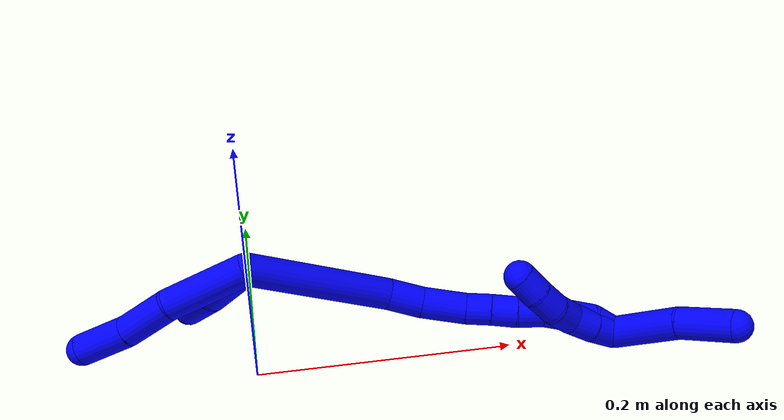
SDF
<sdf version="1.7">
 <world name="default">
  <model name="photoneo_s_sensor">
   <static>1</static>
   <pose>0 0 2 1.57079 1.57079 3.14159</pose>
   <link name="link">
    <inertial><mass>0.1</mass></inertial>
    <sensor name="sensor" type="depth">
     <update_rate>30</update_rate>
     <camera>
      <horizontal_fov>1.22</horizontal_fov>
      <image><width>1920</width><height>1200</height><format>B8G8R8</format></image>
      <clip><near>0.1</near><far>4</far></clip>
      <depth_camera><output>points</output></depth_camera>
     </camera>
     <plugin name="camera_plugin" filename="libgazebo_ros_depth_camera.so">
      <baseline>0.2</baseline>
      <alwaysOn>1</alwaysOn>
      <updateRate>0.0</updateRate>
      <cameraName>camera_ir</cameraName>
      <imageTopicName>/camera/color/image_raw</imageTopicName>
      <cameraInfoTopicName>/camera/color/camera_info</cameraInfoTopicName>
      <depthImageTopicName>/camera/depth/image_raw</depthImageTopicName>
      <depthImageCameraInfoTopicName>/camera/depth/camera_info</depthImageCameraInfoTopicName>
      <pointCloudTopicName>/camera/depth/points</pointCloudTopicName>
      <frameName>fr_optical</frameName>
      <pointCloudCutoff>0.1</pointCloudCutoff>
      <pointCloudCutoffMax>2.0</pointCloudCutoffMax>
      <distortionK1>0</distortionK1>
      <distortionK2>0</distortionK2>
      <distortionK3>0</distortionK3>
      <distortionT1>0</distortionT1>
      <distortionT2>0</distortionT2>
      <CxPrime>0</CxPrime>
      <Cx>0</Cx>
      <Cy>0</Cy>
      <focalLength>0</focalLength>
      <hackBaseline>0</hackBaseline>
     </plugin>
    </sensor>
   </link>
  </model>
  <model name="bin">
   <static>1</static>
   <link name="bottom">
    <collision name="collision-bottom">
     <pose>0 0 -0.01 0 -0 0</pose>
     <geometry><box><size>0.8 0.6 0.02</size></box></geometry>
     <surface>
      <friction><ode><mu>100</mu><mu2>100</mu2></ode></friction>
      <contact><collide_bitmask>65535</collide_bitmask></contact>
     </surface>
    </collision>
   </link>
   <link name="west_wall">
    <collision name="collision-west_wall">
     <pose>-0.41 0 0.1 0 -0 0</pose>
     <geometry><box><size>0.02 0.6 0.2</size></box></geometry>
     <surface>
      <friction><ode><mu>100</mu><mu2>100</mu2></ode></friction>
      <contact><collide_bitmask>65535</collide_bitmask></contact>
     </surface>
    </collision>
   </link>
   <link name="east_wall">
    <collision name="collision-east_wall">
     <pose>0.41 0 0.1 0 -0 0</pose>
     <geometry><box><size>0.02 0.6 0.2</size></box></geometry>
     <surface>
      <friction><ode><mu>100</mu><mu2>100</mu2></ode></friction>
      <contact><collide_bitmask>65535</collide_bitmask></contact>
     </surface>
    </collision>
   </link>
   <link name="south_wall">
    <collision name="collision-south_wall">
     <pose>0 -0.31 0.1 0 -0 0</pose>
     <geometry><box><size>0.8 0.02 0.2</size></box></geometry>
     <surface>
      <friction><ode><mu>100</mu><mu2>100</mu2></ode></friction>
      <contact><collide_bitmask>65535</collide_bitmask></contact>
     </surface>
    </collision>
   </link>
   <link name="north_wall">
    <collision name="collision-north_wall">
     <pose>0 0.31 0.1 0 -0 0</pose>
     <geometry><box><size>0.8 0.02 0.2</size></box></geometry>
     <surface>
      <friction><ode><mu>100</mu><mu2>100</mu2></ode></friction>
      <contact><collide_bitmask>65535</collide_bitmask></contact>
     </surface>
    </collision>
   </link>
  </model>
  <model name="1">
   <static>0</static>
   <link name="1">
    <collision name="collision-cylinder-e_1_2_8">
     <pose>8.9e-05 3.9e-05 -0.033346 -3.14043 0.002684 -2.3262</pose>
     <geometry><cylinder><radius>0.0125</radius><length>0.066691</length></cylinder></geometry>
     <surface>
      <friction><ode><mu>1.16</mu><mu2>1.16</mu2><slip1>0</slip1><slip2>0</slip2></ode></friction>
      <contact><ode><kp>1e+06</kp><kd>1</kd><max_vel>0</max_vel><min_depth>0.001</min_depth></ode></contact>
     </surface>
    </collision>
    <visual name="visual-cylinder-e_1_2_8">
     <pose>8.9e-05 3.9e-05 -0.033346 -3.14043 0.002684 -2.3262</pose>
     <geometry><cylinder><radius>0.0125</radius><length>0.066691</length></cylinder></geometry>
     <material><ambient>0 0 1 1</ambient></material>
    </visual>
    <collision name="collision-cylinder-e_2_8_9">
     <pose>0.004004 0.001491 -0.086918 -3.07183 0.186483 -2.42725</pose>
     <geometry><cylinder><radius>0.0125</radius><length>0.041267</length></cylinder></geometry>
     <surface>
      <friction><ode><mu>1.16</mu><mu2>1.16</mu2><slip1>0</slip1><slip2>0</slip2></ode></friction>
      <contact><ode><kp>1e+06</kp><kd>1</kd><max_vel>0</max_vel><min_depth>0.001</min_depth></ode></contact>
     </surface>
    </collision>
    <visual name="visual-cylinder-e_2_8_9">
     <pose>0.004004 0.001491 -0.086918 -3.07183 0.186483 -2.42725</pose>
     <geometry><cylinder><radius>0.0125</radius><length>0.041267</length></cylinder></geometry>
     <material><ambient>0 0 1 1</ambient></material>
    </visual>
    <collision name="collision-cylinder-e_3_9_6">
     <pose>0.008596 0.005426 -0.127999 -3.02124 0.036429 -0.587234</pose>
     <geometry><cylinder><radius>0.0125</radius><length>0.042042</length></cylinder></geometry>
     <surface>
      <friction><ode><mu>1.16</mu><mu2>1.16</mu2><slip1>0</slip1><slip2>0</slip2></ode></friction>
      <contact><ode><kp>1e+06</kp><kd>1</kd><max_vel>0</max_vel><min_depth>0.001</min_depth></ode></contact>
     </surface>
    </collision>
    <visual name="visual-cylinder-e_3_9_6">
     <pose>0.008596 0.005426 -0.127999 -3.02124 0.036429 -0.587234</pose>
     <geometry><cylinder><radius>0.0125</radius><length>0.042042</length></cylinder></geometry>
     <material><ambient>0 0 1 1</ambient></material>
    </visual>
    <collision name="collision-cylinder-e_1_2_10">
     <pose>0.010007 0.009228 -0.020409 -2.71695 0.420166 -1.55989</pose>
     <geometry><cylinder><radius>0.0125</radius><length>0.049063</length></cylinder></geometry>
     <surface>
      <friction><ode><mu>1.16</mu><mu2>1.16</mu2><slip1>0</slip1><slip2>0</slip2></ode></friction>
      <contact><ode><kp>1e+06</kp><kd>1</kd><max_vel>0</max_vel><min_depth>0.001</min_depth></ode></contact>
     </surface>
    </collision>
    <visual name="visual-cylinder-e_1_2_10">
     <pose>0.010007 0.009228 -0.020409 -2.71695 0.420166 -1.55989</pose>
     <geometry><cylinder><radius>0.0125</radius><length>0.049063</length></cylinder></geometry>
     <material><ambient>0 0 1 1</ambient></material>
    </visual>
    <collision name="collision-cylinder-e_2_10_5">
     <pose>0.030546 0.033629 -0.058352 -2.42825 0.426369 -1.05261</pose>
     <geometry><cylinder><radius>0.0125</radius><length>0.050937</length></cylinder></geometry>
     <surface>
      <friction><ode><mu>1.16</mu><mu2>1.16</mu2><slip1>0</slip1><slip2>0</slip2></ode></friction>
      <contact><ode><kp>1e+06</kp><kd>1</kd><max_vel>0</max_vel><min_depth>0.001</min_depth></ode></contact>
     </surface>
    </collision>
    <visual name="visual-cylinder-e_2_10_5">
     <pose>0.030546 0.033629 -0.058352 -2.42825 0.426369 -1.05261</pose>
     <geometry><cylinder><radius>0.0125</radius><length>0.050937</length></cylinder></geometry>
     <material><ambient>0 0 1 1</ambient></material>
    </visual>
    <collision name="collision-cylinder-e_1_2_11">
     <pose>0.040879 0.006423 0.0403 -0.158049 0.786254 -0.065658</pose>
     <geometry><cylinder><radius>0.0125</radius><length>0.115525</length></cylinder></geometry>
     <surface>
      <friction><ode><mu>1.16</mu><mu2>1.16</mu2><slip1>0</slip1><slip2>0</slip2></ode></friction>
      <contact><ode><kp>1e+06</kp><kd>1</kd><max_vel>0</max_vel><min_depth>0.001</min_depth></ode></contact>
     </surface>
    </collision>
    <visual name="visual-cylinder-e_1_2_11">
     <pose>0.040879 0.006423 0.0403 -0.158049 0.786254 -0.065658</pose>
     <geometry><cylinder><radius>0.0125</radius><length>0.115525</length></cylinder></geometry>
     <material><ambient>0 0 1 1</ambient></material>
    </visual>
    <collision name="collision-cylinder-e_2_11_12">
     <pose>0.09082 0.010991 0.090995 0.17658 0.709281 0.065534</pose>
     <geometry><cylinder><radius>0.0125</radius><length>0.027828</length></cylinder></geometry>
     <surface>
      <friction><ode><mu>1.16</mu><mu2>1.16</mu2><slip1>0</slip1><slip2>0</slip2></ode></friction>
      <contact><ode><kp>1e+06</kp><kd>1</kd><max_vel>0</max_vel><min_depth>0.001</min_depth></ode></contact>
     </surface>
    </collision>
    <visual name="visual-cylinder-e_2_11_12">
     <pose>0.09082 0.010991 0.090995 0.17658 0.709281 0.065534</pose>
     <geometry><cylinder><radius>0.0125</radius><length>0.027828</length></cylinder></geometry>
     <material><ambient>0 0 1 1</ambient></material>
    </visual>
    <collision name="collision-cylinder-e_3_12_13">
     <pose>0.109098 0.005912 0.11619 0.214509 0.546551 0.060338</pose>
     <geometry><cylinder><radius>0.0125</radius><length>0.035463</length></cylinder></geometry>
     <surface>
      <friction><ode><mu>1.16</mu><mu2>1.16</mu2><slip1>0</slip1><slip2>0</slip2></ode></friction>
      <contact><ode><kp>1e+06</kp><kd>1</kd><max_vel>0</max_vel><min_depth>0.001</min_depth></ode></contact>
     </surface>
    </collision>
    <visual name="visual-cylinder-e_3_12_13">
     <pose>0.109098 0.005912 0.11619 0.214509 0.546551 0.060338</pose>
     <geometry><cylinder><radius>0.0125</radius><length>0.035463</length></cylinder></geometry>
     <material><ambient>0 0 1 1</ambient></material>
    </visual>
    <collision name="collision-cylinder-e_4_13_14">
     <pose>0.122209 0.000415 0.140127 0.243823 0.392357 0.048688</pose>
     <geometry><cylinder><radius>0.0125</radius><length>0.020376</length></cylinder></geometry>
     <surface>
      <friction><ode><mu>1.16</mu><mu2>1.16</mu2><slip1>0</slip1><slip2>0</slip2></ode></friction>
      <contact><ode><kp>1e+06</kp><kd>1</kd><max_vel>0</max_vel><min_depth>0.001</min_depth></ode></contact>
     </surface>
    </collision>
    <visual name="visual-cylinder-e_4_13_14">
     <pose>0.122209 0.000415 0.140127 0.243823 0.392357 0.048688</pose>
     <geometry><cylinder><radius>0.0125</radius><length>0.020376</length></cylinder></geometry>
     <material><ambient>0 0 1 1</ambient></material>
    </visual>
    <collision name="collision-cylinder-e_5_14_15">
     <pose>0.13048 -0.004158 0.158059 0.255712 0.448495 0.058627</pose>
     <geometry><cylinder><radius>0.0125</radius><length>0.020181</length></cylinder></geometry>
     <surface>
      <friction><ode><mu>1.16</mu><mu2>1.16</mu2><slip1>0</slip1><slip2>0</slip2></ode></friction>
      <contact><ode><kp>1e+06</kp><kd>1</kd><max_vel>0</max_vel><min_depth>0.001</min_depth></ode></contact>
     </surface>
    </collision>
    <visual name="visual-cylinder-e_5_14_15">
     <pose>0.13048 -0.004158 0.158059 0.255712 0.448495 0.058627</pose>
     <geometry><cylinder><radius>0.0125</radius><length>0.020181</length></cylinder></geometry>
     <material><ambient>0 0 1 1</ambient></material>
    </visual>
    <collision name="collision-cylinder-e_6_15_16">
     <pose>0.138718 -0.007617 0.176332 0.121798 0.384452 0.023734</pose>
     <geometry><cylinder><radius>0.0125</radius><length>0.020596</length></cylinder></geometry>
     <surface>
      <friction><ode><mu>1.16</mu><mu2>1.16</mu2><slip1>0</slip1><slip2>0</slip2></ode></friction>
      <contact><ode><kp>1e+06</kp><kd>1</kd><max_vel>0</max_vel><min_depth>0.001</min_depth></ode></contact>
     </surface>
    </collision>
    <visual name="visual-cylinder-e_6_15_16">
     <pose>0.138718 -0.007617 0.176332 0.121798 0.384452 0.023734</pose>
     <geometry><cylinder><radius>0.0125</radius><length>0.020596</length></cylinder></geometry>
     <material><ambient>0 0 1 1</ambient></material>
    </visual>
    <collision name="collision-cylinder-e_7_16_17">
     <pose>0.148411 -0.010106 0.193835 0.164017 0.621834 0.052811</pose>
     <geometry><cylinder><radius>0.0125</radius><length>0.020019</length></cylinder></geometry>
     <surface>
      <friction><ode><mu>1.16</mu><mu2>1.16</mu2><slip1>0</slip1><slip2>0</slip2></ode></friction>
      <contact><ode><kp>1e+06</kp><kd>1</kd><max_vel>0</max_vel><min_depth>0.001</min_depth></ode></contact>
     </surface>
    </collision>
    <visual name="visual-cylinder-e_7_16_17">
     <pose>0.148411 -0.010106 0.193835 0.164017 0.621834 0.052811</pose>
     <geometry><cylinder><radius>0.0125</radius><length>0.020019</length></cylinder></geometry>
     <material><ambient>0 0 1 1</ambient></material>
    </visual>
    <collision name="collision-cylinder-e_8_17_18">
     <pose>0.160276 -0.01253 0.209764 0.137802 0.647486 0.046304</pose>
     <geometry><cylinder><radius>0.0125</radius><length>0.020007</length></cylinder></geometry>
     <surface>
      <friction><ode><mu>1.16</mu><mu2>1.16</mu2><slip1>0</slip1><slip2>0</slip2></ode></friction>
      <contact><ode><kp>1e+06</kp><kd>1</kd><max_vel>0</max_vel><min_depth>0.001</min_depth></ode></contact>
     </surface>
    </collision>
    <visual name="visual-cylinder-e_8_17_18">
     <pose>0.160276 -0.01253 0.209764 0.137802 0.647486 0.046304</pose>
     <geometry><cylinder><radius>0.0125</radius><length>0.020007</length></cylinder></geometry>
     <material><ambient>0 0 1 1</ambient></material>
    </visual>
    <collision name="collision-cylinder-e_9_18_1">
     <pose>0.174072 -0.016551 0.223258 0.48197 0.888262 0.232827</pose>
     <geometry><cylinder><radius>0.0125</radius><length>0.020005</length></cylinder></geometry>
     <surface>
      <friction><ode><mu>1.16</mu><mu2>1.16</mu2><slip1>0</slip1><slip2>0</slip2></ode></friction>
      <contact><ode><kp>1e+06</kp><kd>1</kd><max_vel>0</max_vel><min_depth>0.001</min_depth></ode></contact>
     </surface>
    </collision>
    <visual name="visual-cylinder-e_9_18_1">
     <pose>0.174072 -0.016551 0.223258 0.48197 0.888262 0.232827</pose>
     <geometry><cylinder><radius>0.0125</radius><length>0.020005</length></cylinder></geometry>
     <material><ambient>0 0 1 1</ambient></material>
    </visual>
    <collision name="collision-cylinder-e_1_1_19">
     <pose>0.174407 -0.019928 0.222167 3.07395 -0.837042 -2.98976</pose>
     <geometry><cylinder><radius>0.0125</radius><length>0.02</length></cylinder></geometry>
     <surface>
      <friction><ode><mu>1.16</mu><mu2>1.16</mu2><slip1>0</slip1><slip2>0</slip2></ode></friction>
      <contact><ode><kp>1e+06</kp><kd>1</kd><max_vel>0</max_vel><min_depth>0.001</min_depth></ode></contact>
     </surface>
    </collision>
    <visual name="visual-cylinder-e_1_1_19">
     <pose>0.174407 -0.019928 0.222167 3.07395 -0.837042 -2.98976</pose>
     <geometry><cylinder><radius>0.0125</radius><length>0.02</length></cylinder></geometry>
     <material><ambient>0 0 1 1</ambient></material>
    </visual>
    <collision name="collision-cylinder-e_2_19_20">
     <pose>0.159161 -0.019864 0.209273 -3.05859 -0.89773 2.96959</pose>
     <geometry><cylinder><radius>0.0125</radius><length>0.02</length></cylinder></geometry>
     <surface>
      <friction><ode><mu>1.16</mu><mu2>1.16</mu2><slip1>0</slip1><slip2>0</slip2></ode></friction>
      <contact><ode><kp>1e+06</kp><kd>1</kd><max_vel>0</max_vel><min_depth>0.001</min_depth></ode></contact>
     </surface>
    </collision>
    <visual name="visual-cylinder-e_2_19_20">
     <pose>0.159161 -0.019864 0.209273 -3.05859 -0.89773 2.96959</pose>
     <geometry><cylinder><radius>0.0125</radius><length>0.02</length></cylinder></geometry>
     <material><ambient>0 0 1 1</ambient></material>
    </visual>
    <collision name="collision-cylinder-e_3_20_21">
     <pose>0.142385 -0.021142 0.198991 2.7261 -1.10984 -2.48605</pose>
     <geometry><cylinder><radius>0.0125</radius><length>0.02</length></cylinder></geometry>
     <surface>
      <friction><ode><mu>1.16</mu><mu2>1.16</mu2><slip1>0</slip1><slip2>0</slip2></ode></friction>
      <contact><ode><kp>1e+06</kp><kd>1</kd><max_vel>0</max_vel><min_depth>0.001</min_depth></ode></contact>
     </surface>
    </collision>
    <visual name="visual-cylinder-e_3_20_21">
     <pose>0.142385 -0.021142 0.198991 2.7261 -1.10984 -2.48605</pose>
     <geometry><cylinder><radius>0.0125</radius><length>0.02</length></cylinder></geometry>
     <material><ambient>0 0 1 1</ambient></material>
    </visual>
    <collision name="collision-cylinder-e_4_21_22">
     <pose>0.124104 -0.021984 0.191439 -2.87428 -1.20131 2.75399</pose>
     <geometry><cylinder><radius>0.0125</radius><length>0.02</length></cylinder></geometry>
     <surface>
      <friction><ode><mu>1.16</mu><mu2>1.16</mu2><slip1>0</slip1><slip2>0</slip2></ode></friction>
      <contact><ode><kp>1e+06</kp><kd>1</kd><max_vel>0</max_vel><min_depth>0.001</min_depth></ode></contact>
     </surface>
    </collision>
    <visual name="visual-cylinder-e_4_21_22">
     <pose>0.124104 -0.021984 0.191439 -2.87428 -1.20131 2.75399</pose>
     <geometry><cylinder><radius>0.0125</radius><length>0.02</length></cylinder></geometry>
     <material><ambient>0 0 1 1</ambient></material>
    </visual>
    <collision name="collision-cylinder-e_5_22_4">
     <pose>0.105616 -0.018688 0.184706 -2.51729 -1.15868 2.22511</pose>
     <geometry><cylinder><radius>0.0125</radius><length>0.02</length></cylinder></geometry>
     <surface>
      <friction><ode><mu>1.16</mu><mu2>1.16</mu2><slip1>0</slip1><slip2>0</slip2></ode></friction>
      <contact><ode><kp>1e+06</kp><kd>1</kd><max_vel>0</max_vel><min_depth>0.001</min_depth></ode></contact>
     </surface>
    </collision>
    <visual name="visual-cylinder-e_5_22_4">
     <pose>0.105616 -0.018688 0.184706 -2.51729 -1.15868 2.22511</pose>
     <geometry><cylinder><radius>0.0125</radius><length>0.02</length></cylinder></geometry>
     <material><ambient>0 0 1 1</ambient></material>
    </visual>
    <collision name="collision-cylinder-e_1_1_23">
     <pose>0.177042 -0.034514 0.25258 0.564836 -0.168905 -0.049119</pose>
     <geometry><cylinder><radius>0.0125</radius><length>0.057001</length></cylinder></geometry>
     <surface>
      <friction><ode><mu>1.16</mu><mu2>1.16</mu2><slip1>0</slip1><slip2>0</slip2></ode></friction>
      <contact><ode><kp>1e+06</kp><kd>1</kd><max_vel>0</max_vel><min_depth>0.001</min_depth></ode></contact>
     </surface>
    </collision>
    <visual name="visual-cylinder-e_1_1_23">
     <pose>0.177042 -0.034514 0.25258 0.564836 -0.168905 -0.049119</pose>
     <geometry><cylinder><radius>0.0125</radius><length>0.057001</length></cylinder></geometry>
     <material><ambient>0 0 1 1</ambient></material>
    </visual>
    <collision name="collision-cylinder-e_2_23_3">
     <pose>0.17259 -0.062398 0.293548 0.640445 0.015761 0.005227</pose>
     <geometry><cylinder><radius>0.0125</radius><length>0.042999</length></cylinder></geometry>
     <surface>
      <friction><ode><mu>1.16</mu><mu2>1.16</mu2><slip1>0</slip1><slip2>0</slip2></ode></friction>
      <contact><ode><kp>1e+06</kp><kd>1</kd><max_vel>0</max_vel><min_depth>0.001</min_depth></ode></contact>
     </surface>
    </collision>
    <visual name="visual-cylinder-e_2_23_3">
     <pose>0.17259 -0.062398 0.293548 0.640445 0.015761 0.005227</pose>
     <geometry><cylinder><radius>0.0125</radius><length>0.042999</length></cylinder></geometry>
     <material><ambient>0 0 1 1</ambient></material>
    </visual>
    <collision name="collision-sphere-3">
     <pose>0.172929 -0.075243 0.310784 0 -0 0</pose>
     <geometry><sphere><radius>0.0125</radius></sphere></geometry>
     <surface>
      <friction><ode><mu>1.16</mu><mu2>1.16</mu2><slip1>0</slip1><slip2>0</slip2></ode></friction>
      <contact><ode><kp>1e+06</kp><kd>1</kd><max_vel>0</max_vel><min_depth>0.001</min_depth></ode></contact>
     </surface>
    </collision>
    <visual name="visual-sphere-3">
     <pose>0.172929 -0.075243 0.310784 0 -0 0</pose>
     <geometry><sphere><radius>0.0125</radius></sphere></geometry>
     <material><ambient>0 0 1 1</ambient></material>
    </visual>
    <collision name="collision-sphere-23">
     <pose>0.172251 -0.049552 0.276311 0 -0 0</pose>
     <geometry><sphere><radius>0.0125</radius></sphere></geometry>
     <surface>
      <friction><ode><mu>1.16</mu><mu2>1.16</mu2><slip1>0</slip1><slip2>0</slip2></ode></friction>
      <contact><ode><kp>1e+06</kp><kd>1</kd><max_vel>0</max_vel><min_depth>0.001</min_depth></ode></contact>
     </surface>
    </collision>
    <visual name="visual-sphere-23">
     <pose>0.172251 -0.049552 0.276311 0 -0 0</pose>
     <geometry><sphere><radius>0.0125</radius></sphere></geometry>
     <material><ambient>0 0 1 1</ambient></material>
    </visual>
    <collision name="collision-sphere-4">
     <pose>0.096453 -0.016347 0.181456 0 -0 0</pose>
     <geometry><sphere><radius>0.0125</radius></sphere></geometry>
     <surface>
      <friction><ode><mu>1.16</mu><mu2>1.16</mu2><slip1>0</slip1><slip2>0</slip2></ode></friction>
      <contact><ode><kp>1e+06</kp><kd>1</kd><max_vel>0</max_vel><min_depth>0.001</min_depth></ode></contact>
     </surface>
    </collision>
    <visual name="visual-sphere-4">
     <pose>0.096453 -0.016347 0.181456 0 -0 0</pose>
     <geometry><sphere><radius>0.0125</radius></sphere></geometry>
     <material><ambient>0 0 1 1</ambient></material>
    </visual>
    <collision name="collision-sphere-22">
     <pose>0.114779 -0.02103 0.187956 0 -0 0</pose>
     <geometry><sphere><radius>0.0125</radius></sphere></geometry>
     <surface>
      <friction><ode><mu>1.16</mu><mu2>1.16</mu2><slip1>0</slip1><slip2>0</slip2></ode></friction>
      <contact><ode><kp>1e+06</kp><kd>1</kd><max_vel>0</max_vel><min_depth>0.001</min_depth></ode></contact>
     </surface>
    </collision>
    <visual name="visual-sphere-22">
     <pose>0.114779 -0.02103 0.187956 0 -0 0</pose>
     <geometry><sphere><radius>0.0125</radius></sphere></geometry>
     <material><ambient>0 0 1 1</ambient></material>
    </visual>
    <collision name="collision-sphere-21">
     <pose>0.133429 -0.022938 0.194922 0 -0 0</pose>
     <geometry><sphere><radius>0.0125</radius></sphere></geometry>
     <surface>
      <friction><ode><mu>1.16</mu><mu2>1.16</mu2><slip1>0</slip1><slip2>0</slip2></ode></friction>
      <contact><ode><kp>1e+06</kp><kd>1</kd><max_vel>0</max_vel><min_depth>0.001</min_depth></ode></contact>
     </surface>
    </collision>
    <visual name="visual-sphere-21">
     <pose>0.133429 -0.022938 0.194922 0 -0 0</pose>
     <geometry><sphere><radius>0.0125</radius></sphere></geometry>
     <material><ambient>0 0 1 1</ambient></material>
    </visual>
    <collision name="collision-sphere-20">
     <pose>0.151342 -0.019347 0.203061 0 -0 0</pose>
     <geometry><sphere><radius>0.0125</radius></sphere></geometry>
     <surface>
      <friction><ode><mu>1.16</mu><mu2>1.16</mu2><slip1>0</slip1><slip2>0</slip2></ode></friction>
      <contact><ode><kp>1e+06</kp><kd>1</kd><max_vel>0</max_vel><min_depth>0.001</min_depth></ode></contact>
     </surface>
    </collision>
    <visual name="visual-sphere-20">
     <pose>0.151342 -0.019347 0.203061 0 -0 0</pose>
     <geometry><sphere><radius>0.0125</radius></sphere></geometry>
     <material><ambient>0 0 1 1</ambient></material>
    </visual>
    <collision name="collision-sphere-5">
     <pose>0.041079 0.048803 -0.075886 0 -0 0</pose>
     <geometry><sphere><radius>0.0125</radius></sphere></geometry>
     <surface>
      <friction><ode><mu>1.16</mu><mu2>1.16</mu2><slip1>0</slip1><slip2>0</slip2></ode></friction>
      <contact><ode><kp>1e+06</kp><kd>1</kd><max_vel>0</max_vel><min_depth>0.001</min_depth></ode></contact>
     </surface>
    </collision>
    <visual name="visual-sphere-5">
     <pose>0.041079 0.048803 -0.075886 0 -0 0</pose>
     <geometry><sphere><radius>0.0125</radius></sphere></geometry>
     <material><ambient>0 0 1 1</ambient></material>
    </visual>
    <collision name="collision-sphere-10">
     <pose>0.020013 0.018455 -0.040817 0 -0 0</pose>
     <geometry><sphere><radius>0.0125</radius></sphere></geometry>
     <surface>
      <friction><ode><mu>1.16</mu><mu2>1.16</mu2><slip1>0</slip1><slip2>0</slip2></ode></friction>
      <contact><ode><kp>1e+06</kp><kd>1</kd><max_vel>0</max_vel><min_depth>0.001</min_depth></ode></contact>
     </surface>
    </collision>
    <visual name="visual-sphere-10">
     <pose>0.020013 0.018455 -0.040817 0 -0 0</pose>
     <geometry><sphere><radius>0.0125</radius></sphere></geometry>
     <material><ambient>0 0 1 1</ambient></material>
    </visual>
    <collision name="collision-sphere-6">
     <pose>0.009361 0.007948 -0.148854 0 -0 0</pose>
     <geometry><sphere><radius>0.0125</radius></sphere></geometry>
     <surface>
      <friction><ode><mu>1.16</mu><mu2>1.16</mu2><slip1>0</slip1><slip2>0</slip2></ode></friction>
      <contact><ode><kp>1e+06</kp><kd>1</kd><max_vel>0</max_vel><min_depth>0.001</min_depth></ode></contact>
     </surface>
    </collision>
    <visual name="visual-sphere-6">
     <pose>0.009361 0.007948 -0.148854 0 -0 0</pose>
     <geometry><sphere><radius>0.0125</radius></sphere></geometry>
     <material><ambient>0 0 1 1</ambient></material>
    </visual>
    <collision name="collision-sphere-9">
     <pose>0.00783 0.002904 -0.107144 0 -0 0</pose>
     <geometry><sphere><radius>0.0125</radius></sphere></geometry>
     <surface>
      <friction><ode><mu>1.16</mu><mu2>1.16</mu2><slip1>0</slip1><slip2>0</slip2></ode></friction>
      <contact><ode><kp>1e+06</kp><kd>1</kd><max_vel>0</max_vel><min_depth>0.001</min_depth></ode></contact>
     </surface>
    </collision>
    <visual name="visual-sphere-9">
     <pose>0.00783 0.002904 -0.107144 0 -0 0</pose>
     <geometry><sphere><radius>0.0125</radius></sphere></geometry>
     <material><ambient>0 0 1 1</ambient></material>
    </visual>
    <collision name="collision-sphere-2">
     <geometry><sphere><radius>0.0125</radius></sphere></geometry>
     <surface>
      <friction><ode><mu>1.16</mu><mu2>1.16</mu2><slip1>0</slip1><slip2>0</slip2></ode></friction>
      <contact><ode><kp>1e+06</kp><kd>1</kd><max_vel>0</max_vel><min_depth>0.001</min_depth></ode></contact>
     </surface>
    </collision>
    <visual name="visual-sphere-2">
     <geometry><sphere><radius>0.0125</radius></sphere></geometry>
     <material><ambient>0 0 1 1</ambient></material>
    </visual>
    <collision name="collision-sphere-19">
     <pose>0.16698 -0.02038 0.215486 0 -0 0</pose>
     <geometry><sphere><radius>0.0125</radius></sphere></geometry>
     <surface>
      <friction><ode><mu>1.16</mu><mu2>1.16</mu2><slip1>0</slip1><slip2>0</slip2></ode></friction>
      <contact><ode><kp>1e+06</kp><kd>1</kd><max_vel>0</max_vel><min_depth>0.001</min_depth></ode></contact>
     </surface>
    </collision>
    <visual name="visual-sphere-19">
     <pose>0.16698 -0.02038 0.215486 0 -0 0</pose>
     <geometry><sphere><radius>0.0125</radius></sphere></geometry>
     <material><ambient>0 0 1 1</ambient></material>
    </visual>
    <collision name="collision-sphere-8">
     <pose>0.000179 7.7e-05 -0.066691 0 -0 0</pose>
     <geometry><sphere><radius>0.0125</radius></sphere></geometry>
     <surface>
      <friction><ode><mu>1.16</mu><mu2>1.16</mu2><slip1>0</slip1><slip2>0</slip2></ode></friction>
      <contact><ode><kp>1e+06</kp><kd>1</kd><max_vel>0</max_vel><min_depth>0.001</min_depth></ode></contact>
     </surface>
    </collision>
    <visual name="visual-sphere-8">
     <pose>0.000179 7.7e-05 -0.066691 0 -0 0</pose>
     <geometry><sphere><radius>0.0125</radius></sphere></geometry>
     <material><ambient>0 0 1 1</ambient></material>
    </visual>
    <collision name="collision-sphere-11">
     <pose>0.081758 0.012846 0.080601 0 -0 0</pose>
     <geometry><sphere><radius>0.0125</radius></sphere></geometry>
     <surface>
      <friction><ode><mu>1.16</mu><mu2>1.16</mu2><slip1>0</slip1><slip2>0</slip2></ode></friction>
      <contact><ode><kp>1e+06</kp><kd>1</kd><max_vel>0</max_vel><min_depth>0.001</min_depth></ode></contact>
     </surface>
    </collision>
    <visual name="visual-sphere-11">
     <pose>0.081758 0.012846 0.080601 0 -0 0</pose>
     <geometry><sphere><radius>0.0125</radius></sphere></geometry>
     <material><ambient>0 0 1 1</ambient></material>
    </visual>
    <collision name="collision-sphere-12">
     <pose>0.099882 0.009137 0.101389 0 -0 0</pose>
     <geometry><sphere><radius>0.0125</radius></sphere></geometry>
     <surface>
      <friction><ode><mu>1.16</mu><mu2>1.16</mu2><slip1>0</slip1><slip2>0</slip2></ode></friction>
      <contact><ode><kp>1e+06</kp><kd>1</kd><max_vel>0</max_vel><min_depth>0.001</min_depth></ode></contact>
     </surface>
    </collision>
    <visual name="visual-sphere-12">
     <pose>0.099882 0.009137 0.101389 0 -0 0</pose>
     <geometry><sphere><radius>0.0125</radius></sphere></geometry>
     <material><ambient>0 0 1 1</ambient></material>
    </visual>
    <collision name="collision-sphere-13">
     <pose>0.118314 0.002687 0.130992 0 -0 0</pose>
     <geometry><sphere><radius>0.0125</radius></sphere></geometry>
     <surface>
      <friction><ode><mu>1.16</mu><mu2>1.16</mu2><slip1>0</slip1><slip2>0</slip2></ode></friction>
      <contact><ode><kp>1e+06</kp><kd>1</kd><max_vel>0</max_vel><min_depth>0.001</min_depth></ode></contact>
     </surface>
    </collision>
    <visual name="visual-sphere-13">
     <pose>0.118314 0.002687 0.130992 0 -0 0</pose>
     <geometry><sphere><radius>0.0125</radius></sphere></geometry>
     <material><ambient>0 0 1 1</ambient></material>
    </visual>
    <collision name="collision-sphere-14">
     <pose>0.126105 -0.001858 0.149262 0 -0 0</pose>
     <geometry><sphere><radius>0.0125</radius></sphere></geometry>
     <surface>
      <friction><ode><mu>1.16</mu><mu2>1.16</mu2><slip1>0</slip1><slip2>0</slip2></ode></friction>
      <contact><ode><kp>1e+06</kp><kd>1</kd><max_vel>0</max_vel><min_depth>0.001</min_depth></ode></contact>
     </surface>
    </collision>
    <visual name="visual-sphere-14">
     <pose>0.126105 -0.001858 0.149262 0 -0 0</pose>
     <geometry><sphere><radius>0.0125</radius></sphere></geometry>
     <material><ambient>0 0 1 1</ambient></material>
    </visual>
    <collision name="collision-sphere-15">
     <pose>0.134856 -0.006458 0.166857 0 -0 0</pose>
     <geometry><sphere><radius>0.0125</radius></sphere></geometry>
     <surface>
      <friction><ode><mu>1.16</mu><mu2>1.16</mu2><slip1>0</slip1><slip2>0</slip2></ode></friction>
      <contact><ode><kp>1e+06</kp><kd>1</kd><max_vel>0</max_vel><min_depth>0.001</min_depth></ode></contact>
     </surface>
    </collision>
    <visual name="visual-sphere-15">
     <pose>0.134856 -0.006458 0.166857 0 -0 0</pose>
     <geometry><sphere><radius>0.0125</radius></sphere></geometry>
     <material><ambient>0 0 1 1</ambient></material>
    </visual>
    <collision name="collision-sphere-16">
     <pose>0.14258 -0.008777 0.185808 0 -0 0</pose>
     <geometry><sphere><radius>0.0125</radius></sphere></geometry>
     <surface>
      <friction><ode><mu>1.16</mu><mu2>1.16</mu2><slip1>0</slip1><slip2>0</slip2></ode></friction>
      <contact><ode><kp>1e+06</kp><kd>1</kd><max_vel>0</max_vel><min_depth>0.001</min_depth></ode></contact>
     </surface>
    </collision>
    <visual name="visual-sphere-16">
     <pose>0.14258 -0.008777 0.185808 0 -0 0</pose>
     <geometry><sphere><radius>0.0125</radius></sphere></geometry>
     <material><ambient>0 0 1 1</ambient></material>
    </visual>
    <collision name="collision-sphere-17">
     <pose>0.154242 -0.011434 0.201861 0 -0 0</pose>
     <geometry><sphere><radius>0.0125</radius></sphere></geometry>
     <surface>
      <friction><ode><mu>1.16</mu><mu2>1.16</mu2><slip1>0</slip1><slip2>0</slip2></ode></friction>
      <contact><ode><kp>1e+06</kp><kd>1</kd><max_vel>0</max_vel><min_depth>0.001</min_depth></ode></contact>
     </surface>
    </collision>
    <visual name="visual-sphere-17">
     <pose>0.154242 -0.011434 0.201861 0 -0 0</pose>
     <geometry><sphere><radius>0.0125</radius></sphere></geometry>
     <material><ambient>0 0 1 1</ambient></material>
    </visual>
    <collision name="collision-sphere-18">
     <pose>0.16631 -0.013626 0.217668 0 -0 0</pose>
     <geometry><sphere><radius>0.0125</radius></sphere></geometry>
     <surface>
      <friction><ode><mu>1.16</mu><mu2>1.16</mu2><slip1>0</slip1><slip2>0</slip2></ode></friction>
      <contact><ode><kp>1e+06</kp><kd>1</kd><max_vel>0</max_vel><min_depth>0.001</min_depth></ode></contact>
     </surface>
    </collision>
    <visual name="visual-sphere-18">
     <pose>0.16631 -0.013626 0.217668 0 -0 0</pose>
     <geometry><sphere><radius>0.0125</radius></sphere></geometry>
     <material><ambient>0 0 1 1</ambient></material>
    </visual>
    <collision name="collision-sphere-1">
     <pose>0.181833 -0.019475 0.228848 0 -0 0</pose>
     <geometry><sphere><radius>0.0125</radius></sphere></geometry>
     <surface>
      <friction><ode><mu>1.16</mu><mu2>1.16</mu2><slip1>0</slip1><slip2>0</slip2></ode></friction>
      <contact><ode><kp>1e+06</kp><kd>1</kd><max_vel>0</max_vel><min_depth>0.001</min_depth></ode></contact>
     </surface>
    </collision>
    <visual name="visual-sphere-1">
     <pose>0.181833 -0.019475 0.228848 0 -0 0</pose>
     <geometry><sphere><radius>0.0125</radius></sphere></geometry>
     <material><ambient>0 0 1 1</ambient></material>
    </visual>
    <inertial>
     <pose>0.083953 -0.005311 0.087352 0 -0 0</pose>
     <mass>0.75</mass>
     <inertia>
      <ixx>7.3e-05</ixx>
      <ixy>0</ixy>
      <ixz>0</ixz>
      <iyy>0.000138</iyy>
      <iyz>0</iyz>
      <izz>-0.000115</izz>
     </inertia>
    </inertial>
   </link>
   <pose>-0.000692 0.026374 0.082301 -0.113001 1.14516 -0.156884</pose>
  </model>
 </world>
</sdf>
